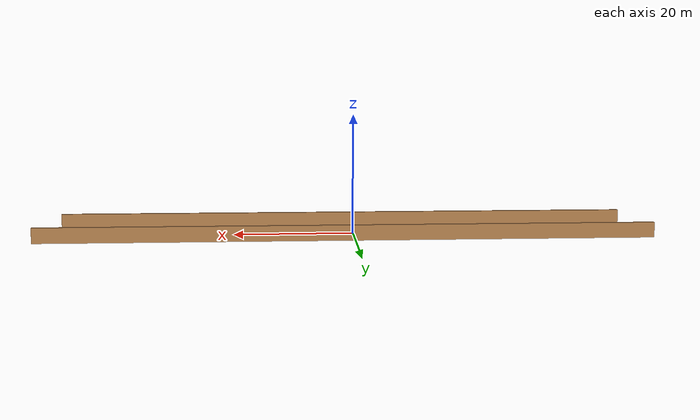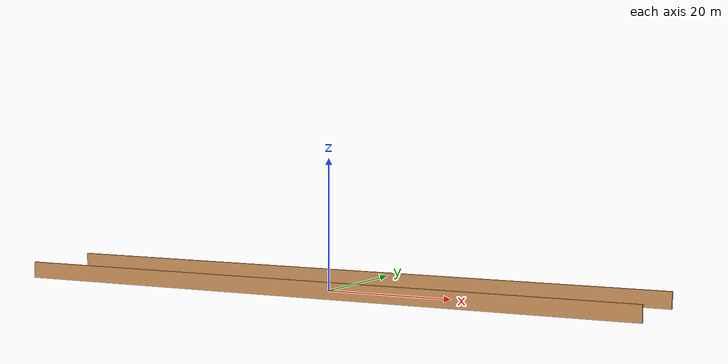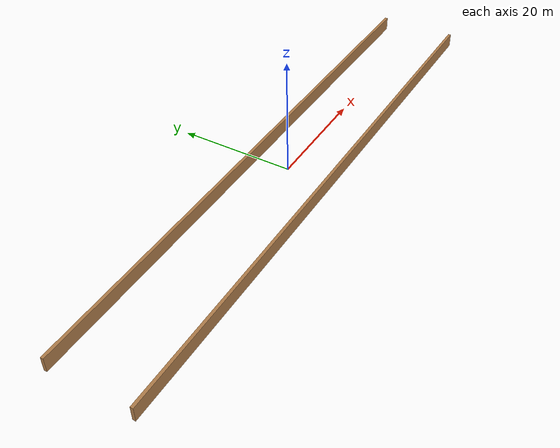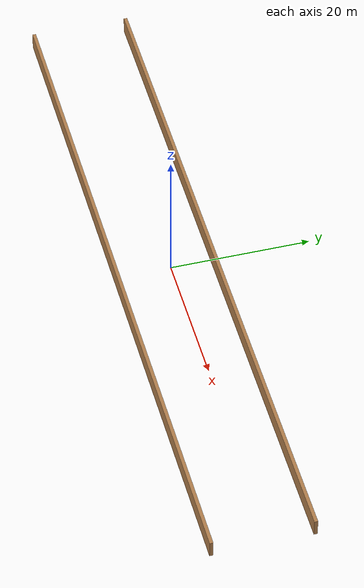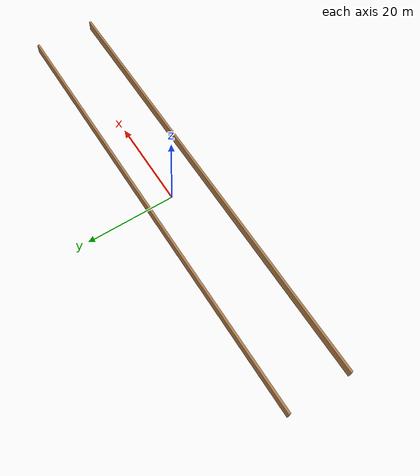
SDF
<?xml version='1.0'?>
<sdf version='1.7'>
  <model name='Astar_Dij_test.world'>
    <pose>0.818439 -1.052 0 0 -0 0</pose>
    <link name='Wall_0'>
      <collision name='Wall_0_Collision'>
        <geometry>
          <box>
            <size>100 0.5 2.5</size>
          </box>
        </geometry>
        <pose>0 0 1.25 0 -0 0</pose>
      </collision>
      <visual name='Wall_0_Visual'>
        <pose>0 0 1.25 0 -0 0</pose>
        <geometry>
          <box>
            <size>100 0.5 2.5</size>
          </box>
        </geometry>
        <material>
          <script>
            <uri>file://media/materials/scripts/gazebo.material</uri>
            <name>Gazebo/Wood</name>
          </script>
          <ambient>1 1 1 1</ambient>
        </material>
        <meta>
          <layer>0</layer>
        </meta>
      </visual>
      <pose>0.008254 6.97038 0 0 -0 0</pose>
    </link>
    <link name='Wall_2'>
      <collision name='Wall_2_Collision'>
        <geometry>
          <box>
            <size>100 0.5 2.5</size>
          </box>
        </geometry>
        <pose>0 0 1.25 0 -0 0</pose>
      </collision>
      <visual name='Wall_2_Visual'>
        <pose>0 0 1.25 0 -0 0</pose>
        <geometry>
          <box>
            <size>100 0.5 2.5</size>
          </box>
        </geometry>
        <material>
          <script>
            <uri>file://media/materials/scripts/gazebo.material</uri>
            <name>Gazebo/Wood</name>
          </script>
          <ambient>1 1 1 1</ambient>
        </material>
        <meta>
          <layer>0</layer>
        </meta>
      </visual>
      <pose>-0.008254 -6.97038 0 0 -0 0</pose>
    </link>
    <static>1</static>
  </model>
</sdf>
